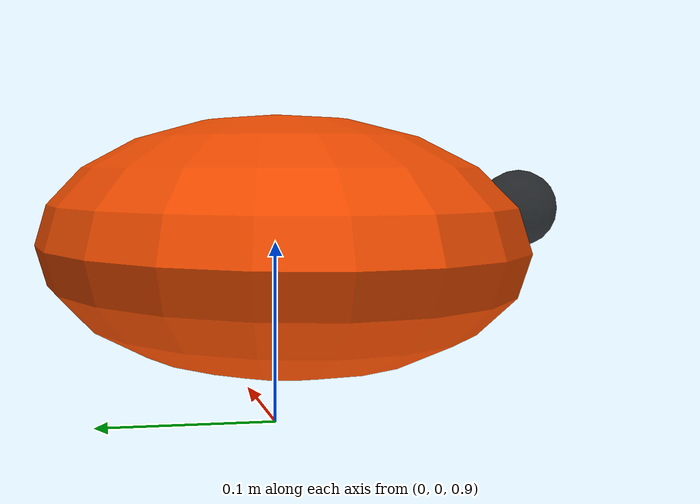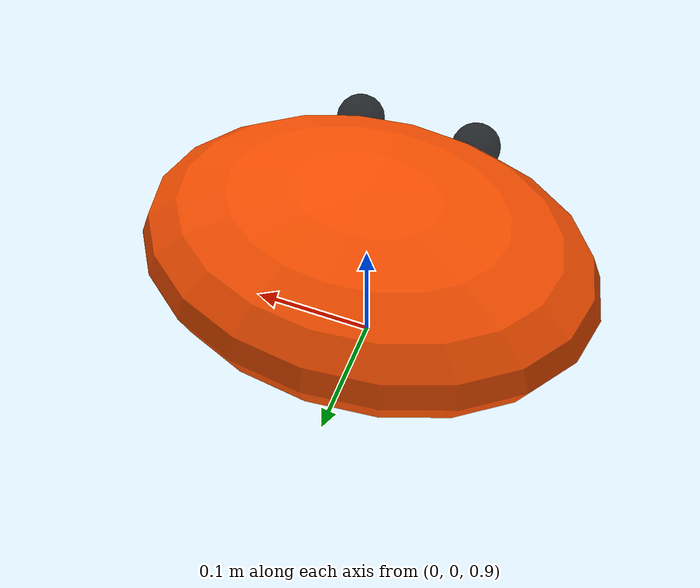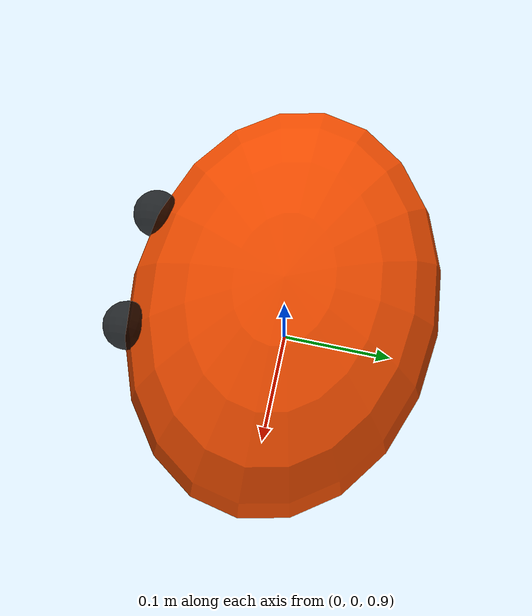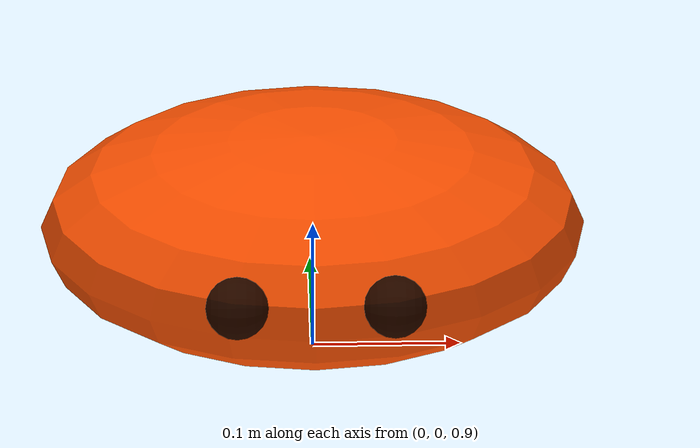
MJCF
<mujoco model="Crab">
  <worldbody>
    <light diffuse=".5 .5 .5" pos="0 0 3" dir="0 0 -1"/>
    <geom type="plane" size="1 1 0.1" rgba="0 .61 0.76 1"/>
    <body pos="0 0 1">
      <joint name="body" type="free"/>
      <geom type="ellipsoid" size=".18 .13 .07" rgba=".95 .3 0 1" group="0"/>
      <body pos="-0.05 -0.12 0.02">
        <joint name="lefteye" type="hinge"/>
        <geom type="sphere" size=".02 0.02" rgba="0 0 0 0.8" euler="0 90 0"/>
      </body>
      <body pos="0.05 -0.12 0.02">
        <joint name="righteye" type="hinge"/>
        <geom type="sphere" size=".02 0.02" rgba="0 0 0 0.8" euler="0 90 0"/>
      </body>
    </body>
  </worldbody>
</mujoco>
